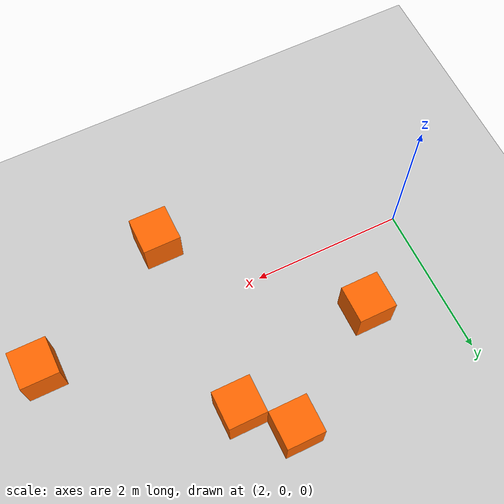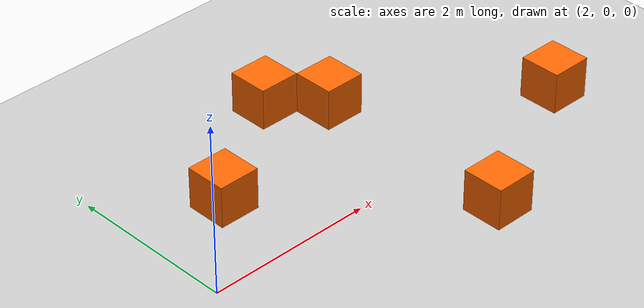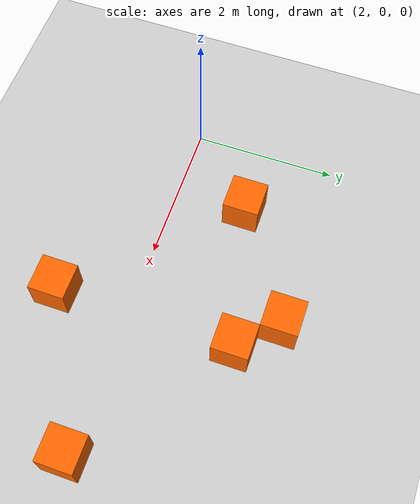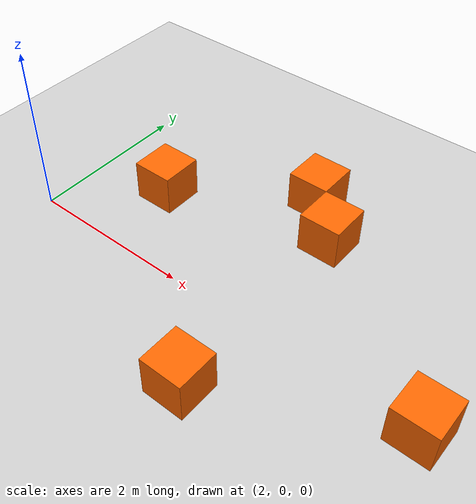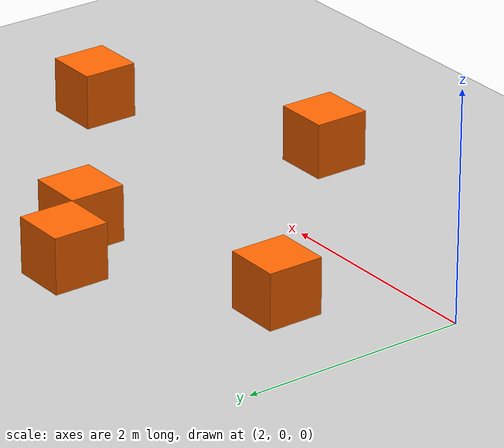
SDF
<?xml version="1.0" ?>
<sdf version="1.6">
  <world name="obstacle">

    <!-- Environment -->
    <include>
      <uri>model://ground_plane</uri>
    </include>
    <include>
      <uri>model://sun</uri>
    </include>

    <!-- Box 1 -->
      <model name="box_1">
        <static>true</static>
        <pose>4.5 2 0.25 0 0 0</pose>
        <link name="link">
          <collision name="collision">
            <geometry>
              <box>
                <size>0.5 0.5 0.5</size>
              </box>
            </geometry>
          </collision>
          <visual name="visual">
            <geometry>
              <box>
                <size>0.5 0.5 0.5</size>
              </box>
            </geometry>
            <material>
              <ambient>1 0.4 0.0 1</ambient>
              <diffuse>1 0.4 0.0 1</diffuse>
              <specular>0.2 0.2 0.2 1</specular>
            </material>
          </visual>
        </link>
      </model>

      <!-- Box 2 -->
      <model name="box_2">
        <static>true</static>
        <pose>3 1 0.25 0 0 0</pose>
        <link name="link">
          <collision name="collision">
            <geometry>
              <box>
                <size>0.5 0.5 0.5</size>
              </box>
            </geometry>
          </collision>
          <visual name="visual">
            <geometry>
              <box>
                <size>0.5 0.5 0.5</size>
              </box>
            </geometry>
            <material>
              <ambient>1 0.4 0.0 1</ambient>
              <diffuse>1 0.4 0.0 1</diffuse>
              <specular>0.2 0.2 0.2 1</specular>
            </material>
          </visual>
        </link>
      </model>

      <!-- Box 3 -->
      <model name="box_3">
        <static>true</static>
        <pose>5 -1 0.25 0 0 0</pose>
        <link name="link">
          <collision name="collision">
            <geometry>
              <box>
                <size>0.5 0.5 0.5</size>
              </box>
            </geometry>
          </collision>
          <visual name="visual">
            <geometry>
              <box>
                <size>0.5 0.5 0.5</size>
              </box>
            </geometry>
            <material>
              <ambient>1 0.4 0.0 1</ambient>
              <diffuse>1 0.4 0.0 1</diffuse>
              <specular>0.2 0.2 0.2 1</specular>
            </material>
          </visual>
        </link>
      </model>

      <!-- Box 4 -->
      <model name="box_4">
        <static>true</static>
        <pose>7 0 0.25 0 0 0</pose>
        <link name="link">
          <collision name="collision">
            <geometry>
              <box>
                <size>0.5 0.5 0.5</size>
              </box>
            </geometry>
          </collision>
          <visual name="visual">
            <geometry>
              <box>
                <size>0.5 0.5 0.5</size>
              </box>
            </geometry>
            <material>
              <ambient>1 0.4 0.0 1</ambient>
              <diffuse>1 0.4 0.0 1</diffuse>
              <specular>0.2 0.2 0.2 1</specular>
            </material>
          </visual>
        </link>
      </model>

      <!-- Box 5 -->
      <model name="box_5">
        <static>true</static>
        <pose>5 1.5 0.25 0 0 0</pose>
        <link name="link">
          <collision name="collision">
            <geometry>
              <box>
                <size>0.5 0.5 0.5</size>
              </box>
            </geometry>
          </collision>
          <visual name="visual">
            <geometry>
              <box>
                <size>0.5 0.5 0.5</size>
              </box>
            </geometry>
            <material>
              <ambient>1 0.4 0.0 1</ambient>
              <diffuse>1 0.4 0.0 1</diffuse>
              <specular>0.2 0.2 0.2 1</specular>
            </material>
          </visual>
        </link>
      </model>
  </world>
</sdf>
